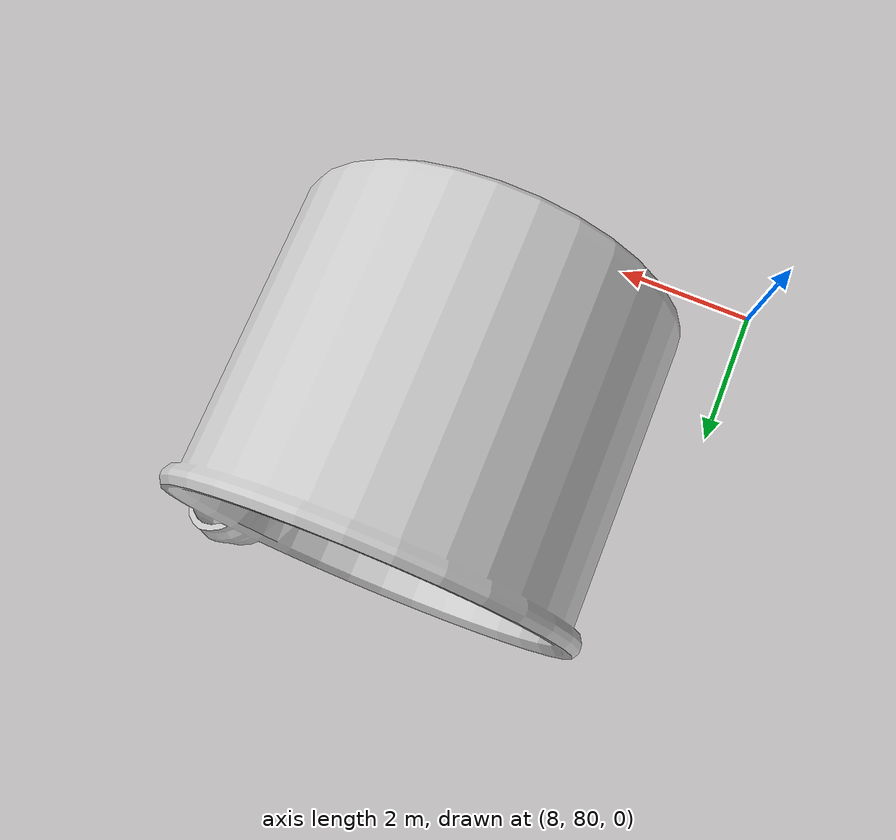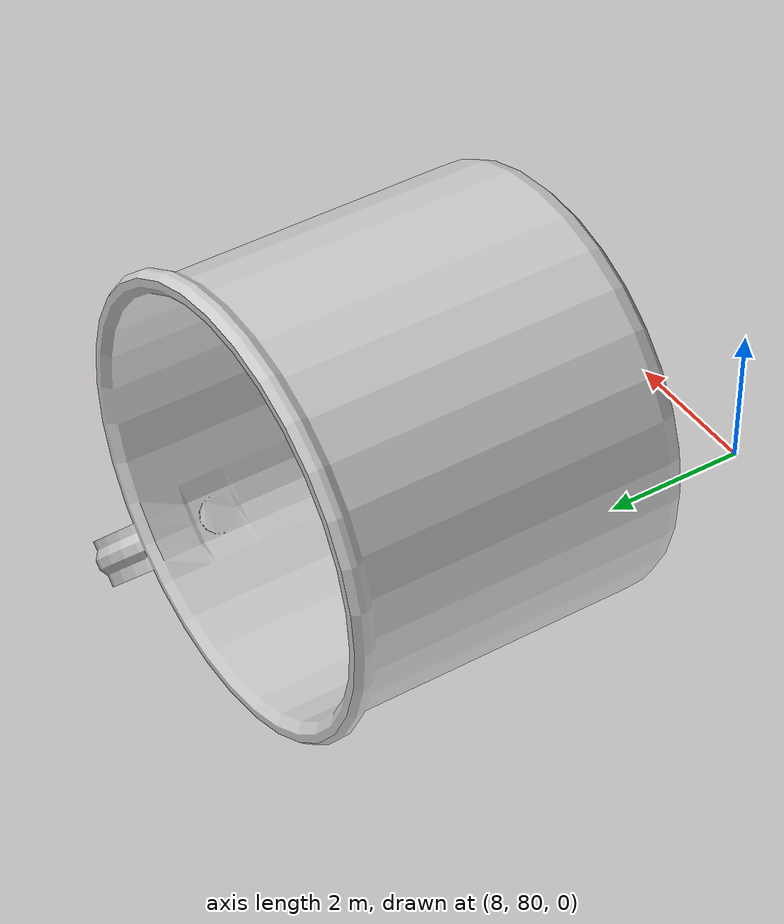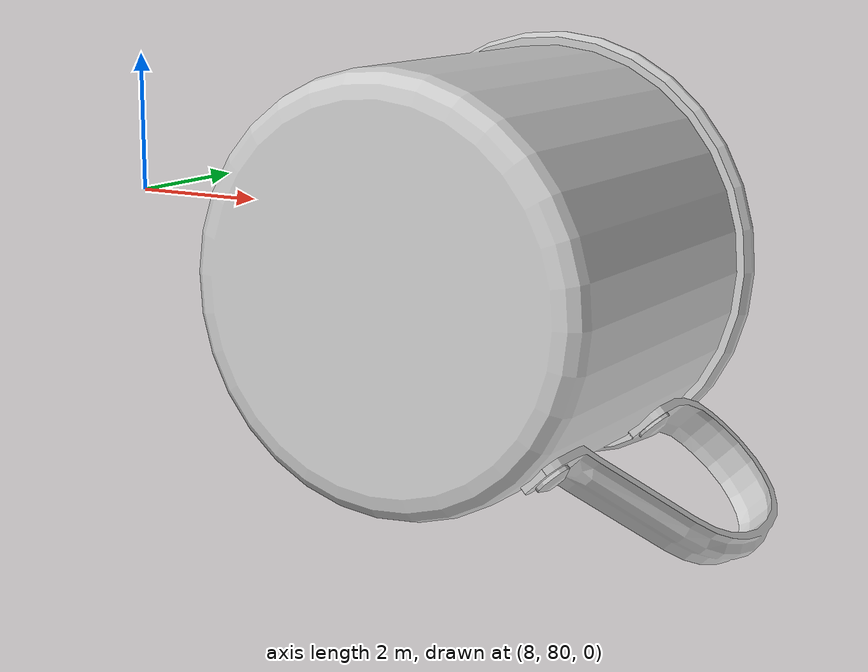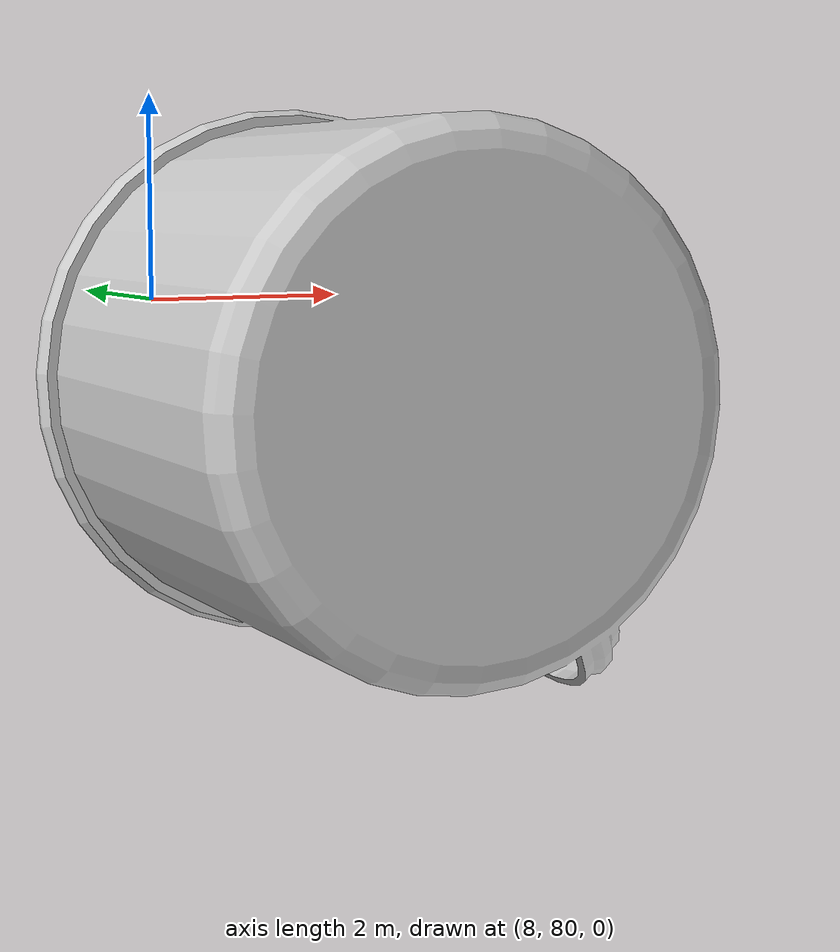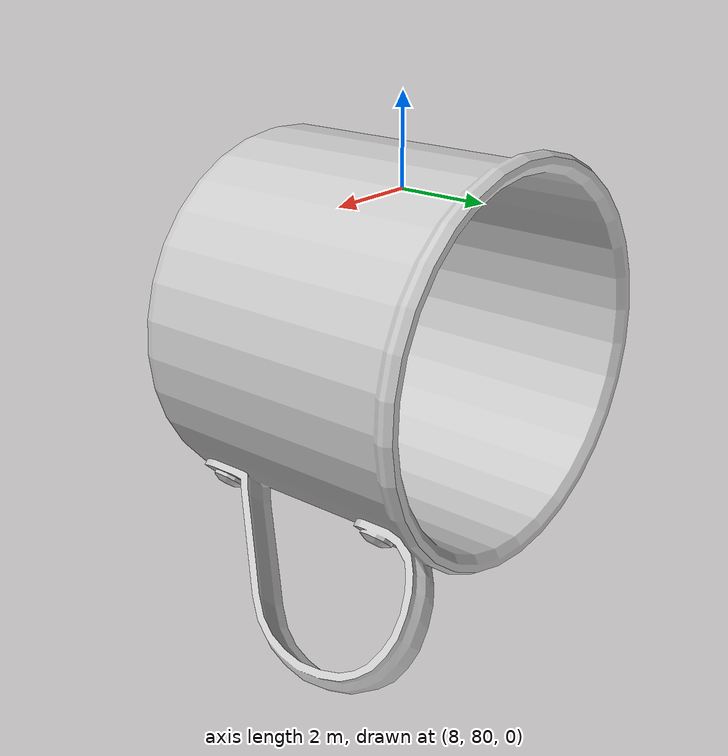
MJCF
<mujoco model="mug">
  <asset>
    <mesh file="meshes/mug.obj" name="mug_mesh"/>

    <material name="mug_material" rgba="0.8 0.8 0.8 1" shininess="0.5"/>
  </asset>

  <worldbody>
    <body>
      <body name="object">
        <geom pos="0 0 0" mesh="mug_mesh" type="mesh"
              density="250" friction="0.95 0.3 0.1" material="mug_material"
              contype="0" conaffinity="0" group="1"/>

        <geom pos="0 0 0" mesh="mug_mesh" type="mesh"
              density="250" friction="0.95 0.3 0.1" material="mug_material"
              group="0"/>

        </body>

      <site rgba="0 0 0 0" size="0.005" pos="0 0 -0.09" name="bottom_site"/>
      <site rgba="0 0 0 0" size="0.005" pos="0 0 0.09" name="top_site"/>
      <site rgba="0 0 0 0" size="0.005" pos="0.035 0 0" name="horizontal_radius_site"/>
    </body>
  </worldbody>
</mujoco>
